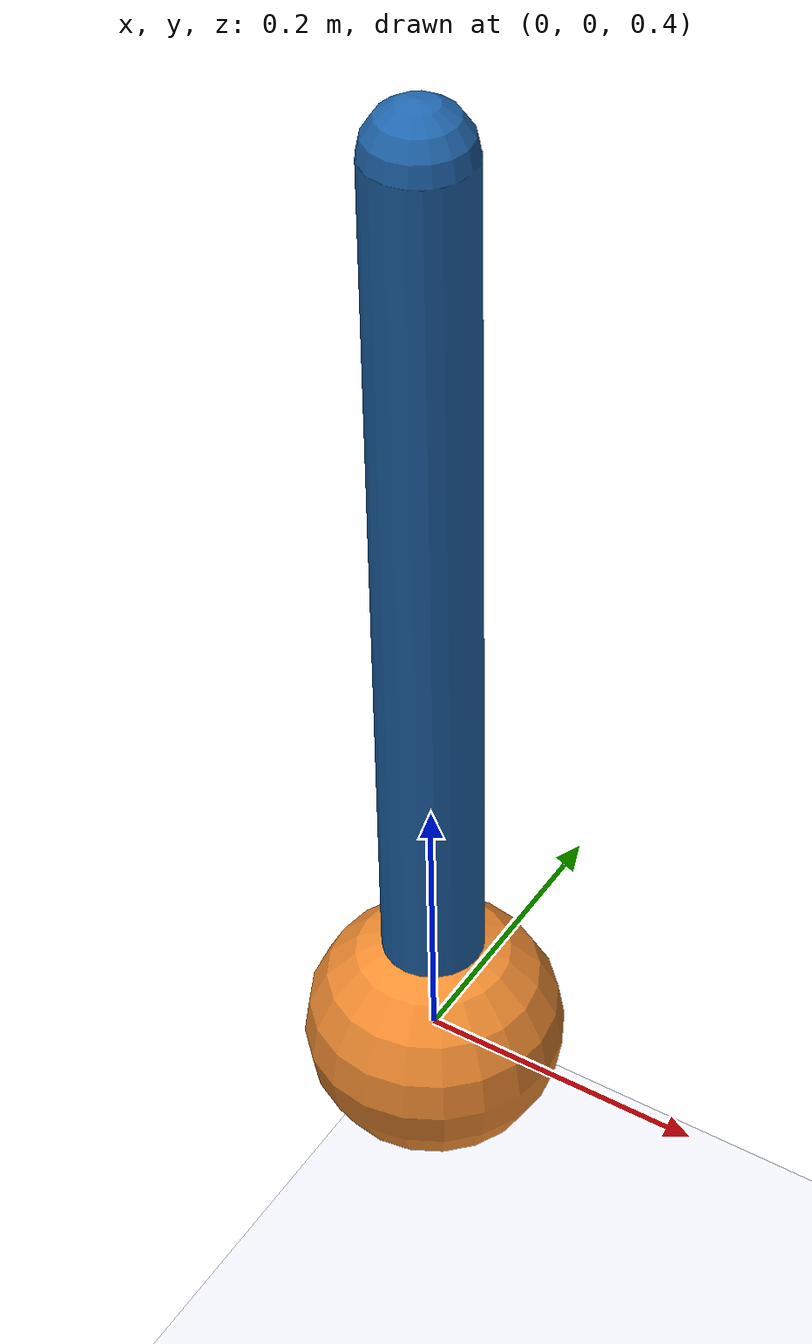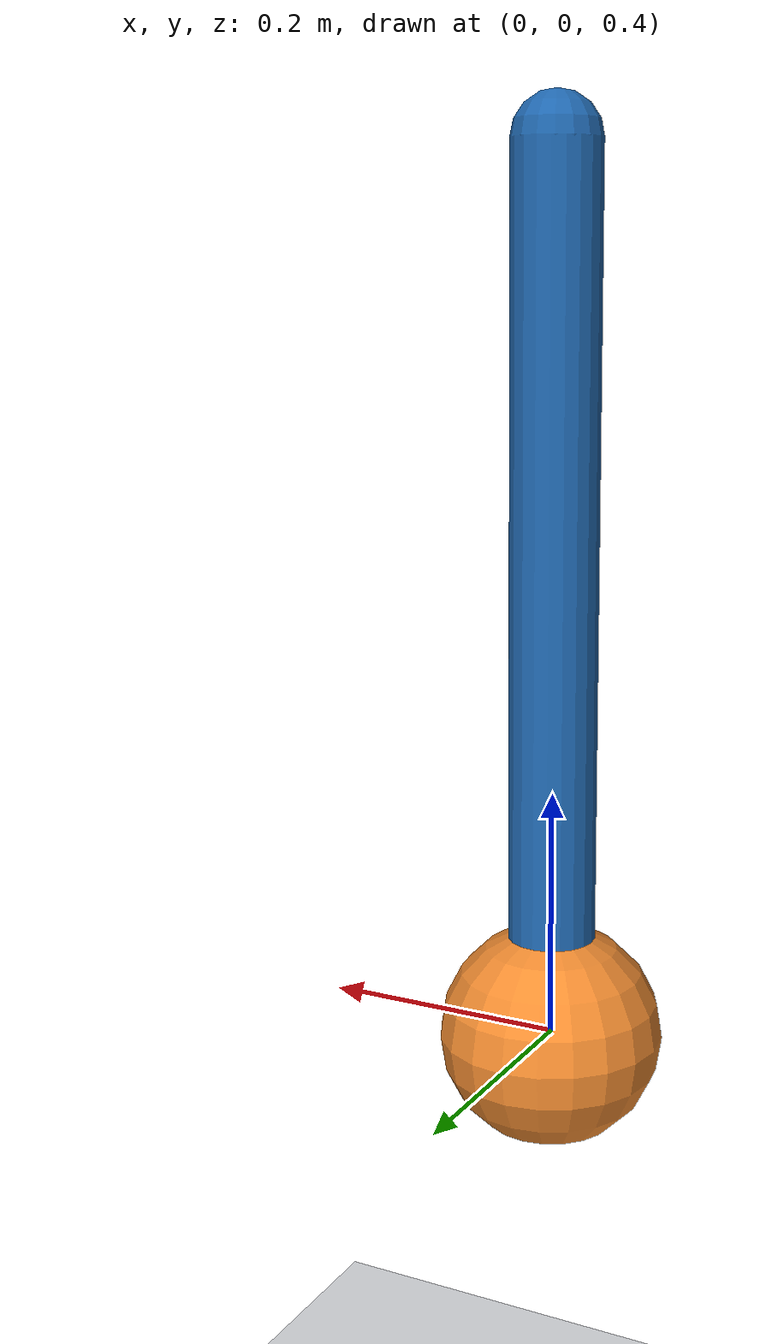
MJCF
<mujoco model="one_joint_pendulum">
  <option timestep="0.002" gravity="0 0 -9.81"/>
  <visual><global offwidth="1200" offheight="720"/></visual>
  <worldbody>
    <light pos="0 -2 3"/>
    <geom type="plane" size="2 2 0.1" rgba="0.93 0.94 0.96 1"/>
    <body name="pendulum" pos="0 0 1.1">
      <joint name="hinge" type="hinge" axis="0 1 0" damping="0.1"/>
      <geom type="capsule" fromto="0 0 0 0 0 -0.7" size="0.035" mass="0.5" rgba="0.12 0.40 0.68 1"/>
      <geom type="sphere" pos="0 0 -0.7" size="0.09" mass="0.3" rgba="0.95 0.55 0.19 1"/>
    </body>
  </worldbody>
  <actuator><motor joint="hinge" gear="1" ctrllimited="true" ctrlrange="-2 2"/></actuator>
</mujoco>
